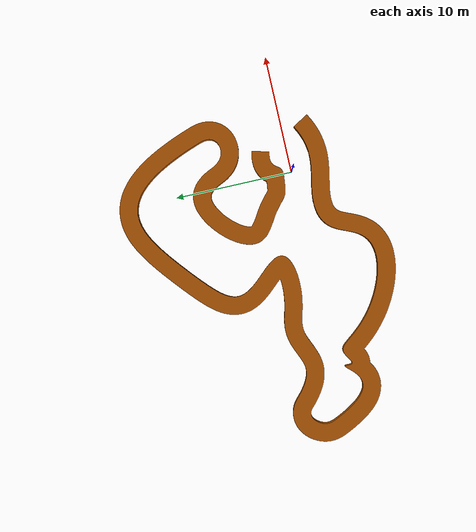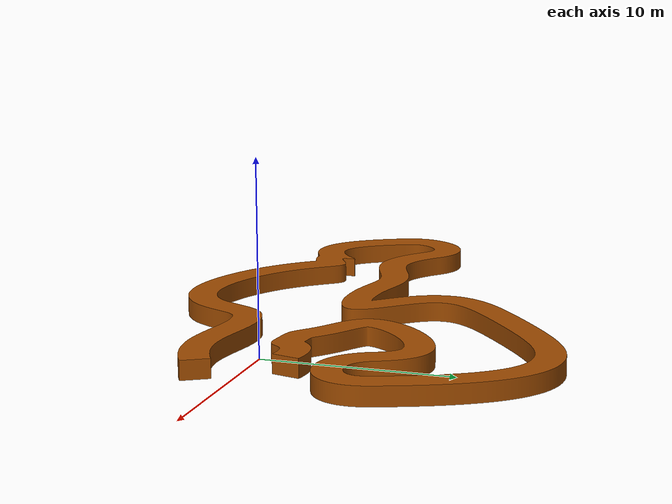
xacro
<?xml version="1.0"?>
<robot name="mine"
    xmlns:xacro="http://ros.org/wiki/xacro">
    <xacro:arg name="is_ignition" default="true" />
    <xacro:arg name="is_sim" default="true" />
    <xacro:include filename="$(find lhd_description)/urdf/mine_gazebo.xacro" />
    <link name="mine_link">
        <inertial>
            <origin xyz="0 0 0" rpy="0 0 0" />
            <mass value="50" />
            <inertia ixx="1.0" ixy="0.0" ixz="0.0" iyy="1.0" iyz="0.0" izz="1.0" />
        </inertial>
        <visual>
            <origin xyz="0 0 0" rpy="0 0 0" />
            <geometry>
                <mesh filename="package://lhd_description/meshes/mine_Y_fig.stl" scale="0.1 0.1 0.1"/>
            </geometry>
            <material name="">
                <color rgba="0.631 0.298 0 1" />
            </material>
        </visual>
        <collision>
            <origin xyz="0 0 0" rpy="0 0 0" />
            <geometry>
                <mesh filename="package://lhd_description/meshes/mine_Y_fig.stl" scale="0.1 0.1 0.1"/>
            </geometry>
        </collision>
        <collision name="collision_box_1">
            <origin xyz="25 0 0.49" rpy="0 0 0"/>
            <geometry>
                <box size="1 1 1"/>
            </geometry>
        </collision>
        <collision name="collision_box_2">
            <origin xyz="-25 0 0.49" rpy="0 0 0"/>
            <geometry>
                <box size="1 1 1"/>
            </geometry>
        </collision>
        <collision name="collision_box_3">
            <origin xyz="0 25 0.49" rpy="0 0 0"/>
            <geometry>
                <box size="1 1 1"/>
            </geometry>
        </collision>
        <collision name="collision_box_4">
            <origin xyz="0 -25 0.49" rpy="0 0 0"/>
            <geometry>
                <box size="1 1 1"/>
            </geometry>
        </collision>
    </link>
</robot>

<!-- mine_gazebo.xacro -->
<robot name="lhd" xmlns:xacro="http://ros.org/wiki/xacro">
  <arg name="is_ignition" default="true"/>
  <gazebo reference="mine_link">
        <mu1>1000000000.0</mu1>
        <mu2>1000000000.0</mu2>
  </gazebo>
</robot>
